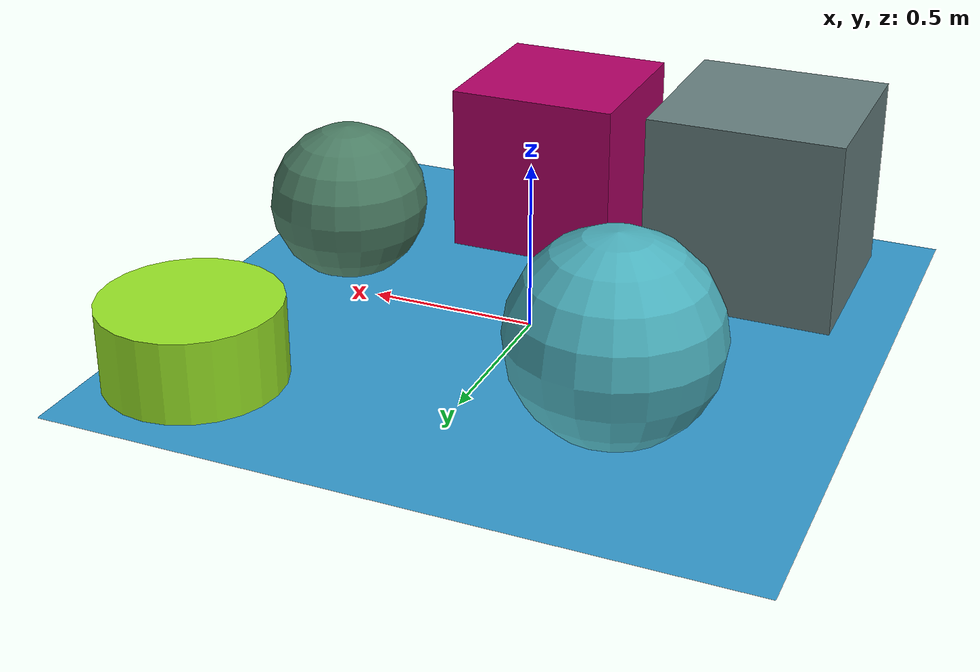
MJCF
<mujoco>
   <asset>
<texture type="skybox" builtin="gradient" rgb1="0.3 0.5 0.3" rgb2="0.1 0.9 1.0" width="256" height="256"/>
<texture name="gradient_0" builtin="gradient" rgb1="0.1 0.6 0.7" rgb2="0.5 0.8 0.8" width="200" height="200"/>
<texture name="checker_1" builtin="checker" type="2d" rgb1="0.9 1.0 0.2" rgb2="0.3 0.8 0.1" width="200" height="200"/>
<texture name="flat_2" builtin="flat" rgb1="0.7 0.0 0.4" rgb2="0.7 0.0 0.4"  width="200" height="200"/>
<texture name="flat_3" builtin="flat" rgb1="0.3 0.5 0.4" rgb2="0.3 0.5 0.4"  width="200" height="200"/>
<texture name="flat_4" builtin="flat" rgb1="0.4 0.5 0.5" rgb2="0.4 0.5 0.5"  width="200" height="200"/><material name="gradient_0_mat" reflectance="0" texture="gradient_0" texuniform="true"/>
<material name="checker_1_mat" reflectance="0" texrepeat="9 9" texture="checker_1" texuniform="false" />
<material name="flat_2_mat" reflectance="0" texture="flat_2" texuniform="true"/>
<material name="flat_3_mat" reflectance="0" texture="flat_3" texuniform="true"/>
<material name="flat_4_mat" reflectance="0" texture="flat_4" texuniform="true"/>
   </asset>

   <worldbody>
      <light diffuse=".9 .9 .9" pos="0 0 3" dir="0 0 -1"/>
     <geom type="plane" size="1 1 0.1" rgba="0.2 0.6 0.8 1"/>
<geom type="sphere" pos="-0.43 0.49 0.29" size="0.29 0.29 0.29" material="gradient_0_mat" />
<geom type="cylinder" pos="0.73 0.65 0.12" size="0.26 0.12 0.12" material="checker_1_mat" />
<geom type="box" pos="0.18 -0.69 0.26" size="0.26 0.26 0.26" material="flat_2_mat" />
<geom type="sphere" pos="0.65 -0.12 0.24" size="0.24 0.24 0.24" material="flat_3_mat" />
<geom type="box" pos="-0.53 -0.57 0.29" size="0.29 0.29 0.29" material="flat_4_mat" /><camera euler="60 0 180" fovy="60" name="camera_a" pos="0 -1.5 1"></camera>   </worldbody>
</mujoco>
